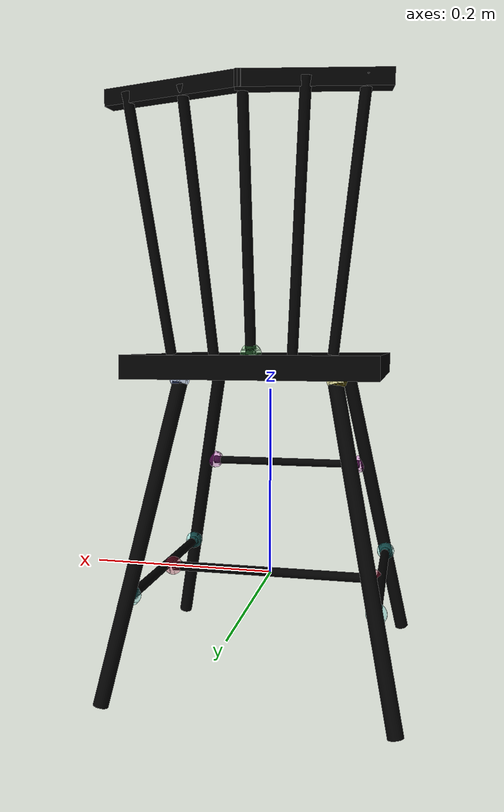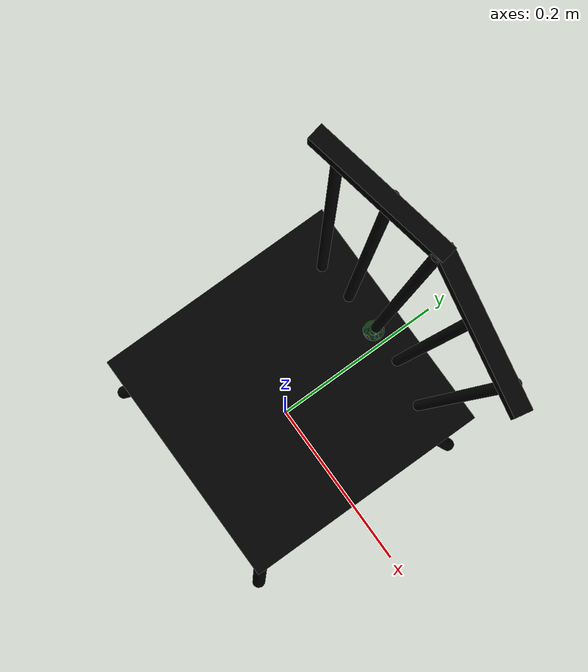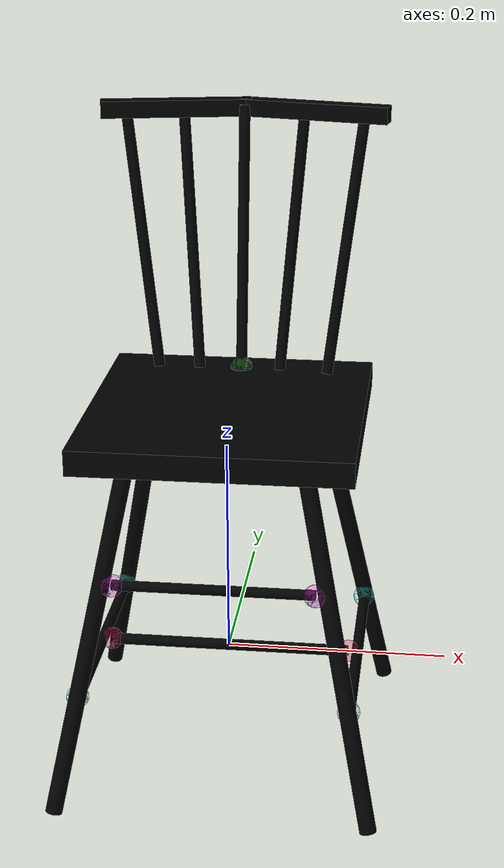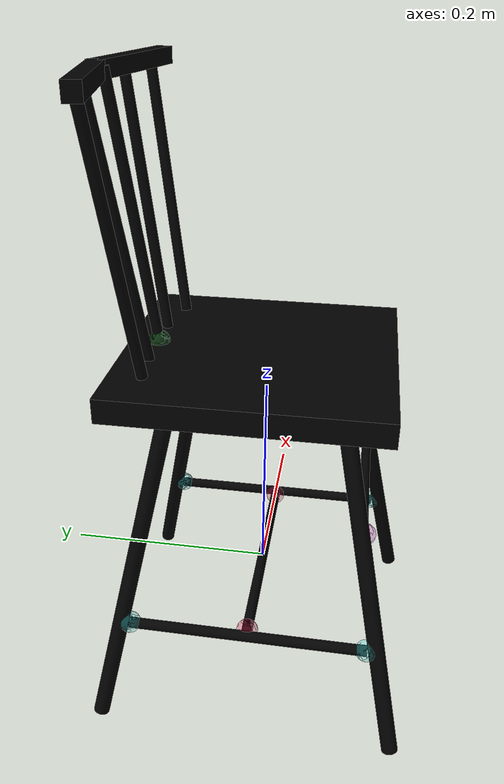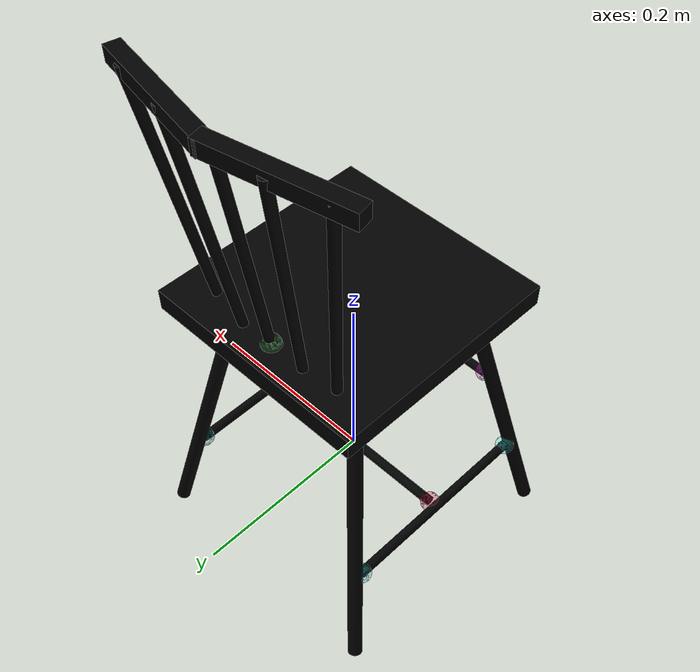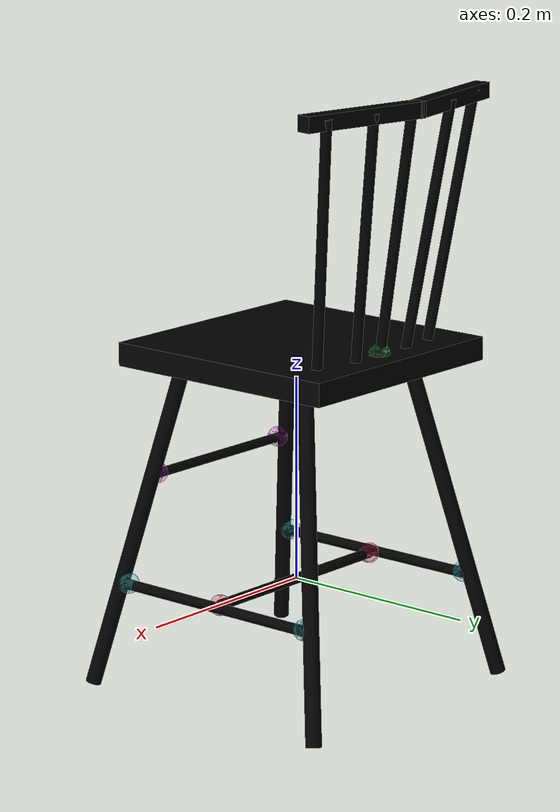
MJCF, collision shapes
<mujoco model="chair_agam_0005">
    <asset>
        <mesh file="chair_agam_0005/0.stl" name="part0"
              scale="0.0005039999999999999 0.0005039999999999999 0.0005039999999999999"/>
        <mesh file="chair_agam_0005/9.stl" name="part9"
              scale="0.0005039999999999999 0.0005039999999999999 0.0005039999999999999"/>
        <mesh file="chair_agam_0005/8.stl" name="part8"
              scale="0.0005039999999999999 0.0005039999999999999 0.0005039999999999999"/>
        <mesh file="chair_agam_0005/7.stl" name="part7"
              scale="0.0005039999999999999 0.0005039999999999999 0.0005039999999999999"/>
        <mesh file="chair_agam_0005/6.stl" name="part6"
              scale="0.0005039999999999999 0.0005039999999999999 0.0005039999999999999"/>
        <mesh file="chair_agam_0005/5.stl" name="part5"
              scale="0.0005039999999999999 0.0005039999999999999 0.0005039999999999999"/>
        <mesh file="chair_agam_0005/4.stl" name="part4"
              scale="0.0005039999999999999 0.0005039999999999999 0.0005039999999999999"/>
        <mesh file="chair_agam_0005/3.stl" name="part3"
              scale="0.0005039999999999999 0.0005039999999999999 0.0005039999999999999"/>
        <mesh file="chair_agam_0005/2.stl" name="part2"
              scale="0.0005039999999999999 0.0005039999999999999 0.0005039999999999999"/>
        <mesh file="chair_agam_0005/1.stl" name="part1"
              scale="0.0005039999999999999 0.0005039999999999999 0.0005039999999999999"/>
    </asset>
    <equality>
        <weld active="false" body1="7_part7" body2="3_part3" solimp="1 1 0.5" solref="0.01 0.3"/>
        <weld active="false" body1="4_part4" body2="3_part3" solimp="1 1 0.5" solref="0.01 0.3"/>
        <weld active="false" body1="6_part6" body2="3_part3" solimp="1 1 0.5" solref="0.01 0.3"/>
        <weld active="false" body1="5_part5" body2="3_part3" solimp="1 1 0.5" solref="0.01 0.3"/>
        <weld active="false" body1="8_part8" body2="7_part7" solimp="1 1 0.5" solref="0.01 0.3"/>
        <weld active="false" body1="8_part8" body2="5_part5" solimp="1 1 0.5" solref="0.01 0.3"/>
        <weld active="false" body1="9_part9" body2="8_part8" solimp="1 1 0.5" solref="0.01 0.3"/>
        <weld active="false" body1="0_part0" body2="1_part1" solimp="1 1 0.5" solref="0.01 0.3"/>
        <weld active="false" body1="0_part0" body2="2_part2" solimp="1 1 0.5" solref="0.01 0.3"/>
        <weld active="false" body1="8_part8" body2="6_part6" solimp="1 1 0.5" solref="0.01 0.3"/>
        <weld active="false" body1="7_part7" body2="1_part1" solimp="1 1 0.5" solref="0.01 0.3"/>
        <weld active="false" body1="7_part7" body2="2_part2" solimp="1 1 0.5" solref="0.01 0.3"/>
        <weld active="false" body1="4_part4" body2="1_part1" solimp="1 1 0.5" solref="0.01 0.3"/>
        <weld active="false" body1="4_part4" body2="2_part2" solimp="1 1 0.5" solref="0.01 0.3"/>
        <weld active="false" body1="6_part6" body2="1_part1" solimp="1 1 0.5" solref="0.01 0.3"/>
        <weld active="false" body1="6_part6" body2="2_part2" solimp="1 1 0.5" solref="0.01 0.3"/>
        <weld active="false" body1="5_part5" body2="1_part1" solimp="1 1 0.5" solref="0.01 0.3"/>
        <weld active="false" body1="5_part5" body2="2_part2" solimp="1 1 0.5" solref="0.01 0.3"/>
        <weld active="false" body1="8_part8" body2="4_part4" solimp="1 1 0.5" solref="0.01 0.3"/>
    </equality>
    <worldbody>
        <body name="0_part0" pos="-1.0079999999999999e-10 5.0399999999999995e-11 0.0" quat="1 0 0 0">
            <geom conaffinity="0" contype="0" density="0" mesh="part0" name="0_part0_mesh" pos="0.0 0.0 0.0"
                  rgba="0.82 0.71 0.55 1" type="mesh"/>
            <site name="0_part0_horizontal_radius_site" pos="-1.0079999999999999e-10 5.0399999999999995e-11 0.0"
                  quat="1 0 0 0" rgba="0 0 0 0" size="0.0005039999999999999"/>
            <site name="0_part0_top_site" pos="-1.0079999999999999e-10 5.0399999999999995e-11 0.0071855760312"
                  quat="1 0 0 0" rgba="0 0 0 0" size="0.0005039999999999999"/>
            <site name="0_part0_bottom_site" pos="-1.0079999999999999e-10 5.0399999999999995e-11 -0.0071855760312"
                  quat="1 0 0 0" rgba="0 0 0 0" size="0.0005039999999999999"/>
            <site name="0_part0_corner_site8" pos="-0.11948160737519999 0.0071855713439999995 0.0071855760312"
                  quat="1 0 0 0" rgba="0 0 0 0" size="0.01008"/>
            <site name="0_part0_corner_site7" pos="0.11948160717359999 0.0071855713439999995 0.0071855760312"
                  quat="1 0 0 0" rgba="0 0 0 0" size="0.01008"/>
            <site name="0_part0_corner_site6" pos="0.11948160717359999 -0.0071855712432 0.0071855760312" quat="1 0 0 0"
                  rgba="0 0 0 0" size="0.01008"/>
            <site name="0_part0_corner_site5" pos="-0.11948160737519999 -0.0071855712432 0.0071855760312" quat="1 0 0 0"
                  rgba="0 0 0 0" size="0.01008"/>
            <site name="0_part0_corner_site4" pos="-0.11948160737519999 0.0071855713439999995 -0.0071855760312"
                  quat="1 0 0 0" rgba="0 0 0 0" size="0.01008"/>
            <site name="0_part0_corner_site3" pos="0.11948160717359999 0.0071855713439999995 -0.0071855760312"
                  quat="1 0 0 0" rgba="0 0 0 0" size="0.01008"/>
            <site name="0_part0_corner_site2" pos="0.11948160717359999 -0.0071855712432 -0.0071855760312" quat="1 0 0 0"
                  rgba="0 0 0 0" size="0.01008"/>
            <site name="0_part0_corner_site1" pos="-0.11948160737519999 -0.0071855712432 -0.0071855760312"
                  quat="1 0 0 0" rgba="0 0 0 0" size="0.01008"/>
            <site name="centerpole-sidepole,conn_site2" pos="-0.11088 0.0 0.0" quat="0.7071067 0 0.7071068 0"
                  rgba="0.9019 0.0980 0.2941 0.3" size="0.01008"/>
            <site name="centerpole-sidepole,conn_site1" pos="0.11088 0.0 0.0" quat="0.7071067 0 -0.7071068 0"
                  rgba="0.9019 0.0980 0.2941 0.3" size="0.01008"/>
            <site name="centerpole-sidepole,conn_site0" pos="-0.11088 0.0 0.0" quat="0.7071067 0 0.7071068 0"
                  rgba="0.9019 0.0980 0.2941 0.3" size="0.01008"/>
            <site name="centerpole-sidepole,conn_site-1" pos="0.11088 0.0 0.0" quat="0.7071067 0 -0.7071068 0"
                  rgba="0.9019 0.0980 0.2941 0.3" size="0.01008"/>
            <geom density="50" name="noviz_collision_0_part0_0"
                  pos="9.6264e-07 1.5120000000000002e-08 -5.543999999999999e-08" quat="0.7071067 0 0.7071068 0"
                  rgba="0 0 0 0" size="0.00504 0.11088" solref="0.001 1" type="cylinder"/>
        </body>
        <body name="9_part9" pos="-8.9208e-09 0.1202628134232 0.35704090280879996" quat="1 0 0 0">
            <geom conaffinity="0" contype="0" density="0" mesh="part9" name="9_part9_mesh" pos="0.0 0.0 0.0"
                  rgba="0.82 0.71 0.55 1" type="mesh"/>
            <site name="9_part9_horizontal_radius_site" pos="0.0 0.0 0.0" quat="1 0 0 0" rgba="0 0 0 0"
                  size="0.0005039999999999999"/>
            <site name="9_part9_top_site" pos="0.0 0.0 0.1251526684464" quat="1 0 0 0" rgba="0 0 0 0"
                  size="0.0005039999999999999"/>
            <site name="9_part9_bottom_site" pos="0.0 0.0 -0.1251526684464" quat="1 0 0 0" rgba="0 0 0 0"
                  size="0.0005039999999999999"/>
            <site name="9_part9_corner_site8" pos="-0.13371235652879998 0.029543431629599996 0.1251526684464"
                  quat="1 0 0 0" rgba="0 0 0 0" size="0.01008"/>
            <site name="9_part9_corner_site7" pos="0.13371235652879998 0.029543431629599996 0.1251526684464"
                  quat="1 0 0 0" rgba="0 0 0 0" size="0.01008"/>
            <site name="9_part9_corner_site6" pos="0.13371235652879998 -0.029543431629599996 0.1251526684464"
                  quat="1 0 0 0" rgba="0 0 0 0" size="0.01008"/>
            <site name="9_part9_corner_site5" pos="-0.13371235652879998 -0.029543431629599996 0.1251526684464"
                  quat="1 0 0 0" rgba="0 0 0 0" size="0.01008"/>
            <site name="9_part9_corner_site4" pos="-0.13371235652879998 0.029543431629599996 -0.1251526684464"
                  quat="1 0 0 0" rgba="0 0 0 0" size="0.01008"/>
            <site name="9_part9_corner_site3" pos="0.13371235652879998 0.029543431629599996 -0.1251526684464"
                  quat="1 0 0 0" rgba="0 0 0 0" size="0.01008"/>
            <site name="9_part9_corner_site2" pos="0.13371235652879998 -0.029543431629599996 -0.1251526684464"
                  quat="1 0 0 0" rgba="0 0 0 0" size="0.01008"/>
            <site name="9_part9_corner_site1" pos="-0.13371235652879998 -0.029543431629599996 -0.1251526684464"
                  quat="1 0 0 0" rgba="0 0 0 0" size="0.01008"/>
            <site name="back-seat,0,conn_site1" pos="0.0 -0.0189588168 -0.11814490799999998" quat="1 0 0 0"
                  rgba="0.2352 0.7058 0.2941 0.3" size="0.01008"/>
            <geom density="50" name="noviz_collision_9_part9_0"
                  pos="3.7648800000000005e-06 -0.00034330967999999997 -0.0007129029599999999"
                  quat="0.9971262 -0.07575821 0 0" rgba="0 0 0 0" size="0.00504 0.12095999999999998" solref="0.001 1"
                  type="cylinder"/>
            <geom density="50" name="noviz_collision_9_part9_1"
                  pos="-0.04737598992 -0.0003108168 -0.0012169029599999998"
                  quat="0.9963928 -0.07759933 -0.03434765 0.000284971" rgba="0 0 0 0" size="0.00504 0.12095999999999998"
                  solref="0.001 1" type="cylinder"/>
            <geom density="50" name="noviz_collision_9_part9_2" pos="-0.09172799999999999 -0.0083748168 0.00079909704"
                  quat="0.9963063 -0.05911345 -0.0622605 0.001762478" rgba="0 0 0 0" size="0.00504 0.12095999999999998"
                  solref="0.001 1" type="cylinder"/>
            <geom density="50" name="noviz_collision_9_part9_3"
                  pos="0.045360010080000006 -0.00034330967999999997 -0.0007129029599999999"
                  quat="0.9965149 -0.07353739 0.03937308 -0.0003266643" rgba="0 0 0 0"
                  size="0.00504 0.12095999999999998" solref="0.001 1" type="cylinder"/>
            <geom density="50" name="noviz_collision_9_part9_4" pos="0.095256 -0.0093828168 0.00029509704"
                  quat="0.9955656 -0.07231736 0.060159 -0.0004991174" rgba="0 0 0 0" size="0.00504 0.12095999999999998"
                  solref="0.001 1" type="cylinder"/>
            <geom density="50" name="noviz_collision_9_part9_5" pos="-0.061488 0.011785183199999999 0.11621509199999998"
                  quat="0.9954613 0 0 0.095167" rgba="0 0 0 0" size="0.06804 0.007559999999999999 0.007559999999999999"
                  solref="0.001 1" type="box"/>
            <geom density="50" name="noviz_collision_9_part9_6" pos="0.064008 0.011785183199999999 0.11621509199999998"
                  quat="0.9954612 0 0 -0.09516817" rgba="0 0 0 0"
                  size="0.06804 0.007559999999999999 0.007559999999999999" solref="0.001 1" type="box"/>
        </body>
        <body name="8_part8" pos="-7.3584e-09 0.0074996166672 0.22616160204959995" quat="1 0 0 0">
            <geom conaffinity="0" contype="0" density="0" mesh="part8" name="8_part8_mesh" pos="0.0 0.0 0.0"
                  rgba="0.82 0.71 0.55 1" type="mesh"/>
            <site name="8_part8_horizontal_radius_site" pos="-0.0 -9.071999999999999e-10 0.0" quat="1 0 0 0"
                  rgba="0 0 0 0" size="0.0005039999999999999"/>
            <site name="8_part8_top_site" pos="0.0 -9.071999999999999e-10 0.012801612297599999" quat="1 0 0 0"
                  rgba="0 0 0 0" size="0.0005039999999999999"/>
            <site name="8_part8_bottom_site" pos="0.0 -9.071999999999999e-10 -0.012801612297599999" quat="1 0 0 0"
                  rgba="0 0 0 0" size="0.0005039999999999999"/>
            <site name="8_part8_corner_site8" pos="-0.1255258149768 0.1280160365904 0.012801612297599999" quat="1 0 0 0"
                  rgba="0 0 0 0" size="0.01008"/>
            <site name="8_part8_corner_site7" pos="0.1255258149768 0.1280160365904 0.012801612297599999" quat="1 0 0 0"
                  rgba="0 0 0 0" size="0.01008"/>
            <site name="8_part8_corner_site6" pos="0.1255258149768 -0.1280160384552 0.012801612297599999" quat="1 0 0 0"
                  rgba="0 0 0 0" size="0.01008"/>
            <site name="8_part8_corner_site5" pos="-0.1255258149768 -0.1280160384552 0.012801612297599999"
                  quat="1 0 0 0" rgba="0 0 0 0" size="0.01008"/>
            <site name="8_part8_corner_site4" pos="-0.1255258149768 0.1280160365904 -0.012801612297599999"
                  quat="1 0 0 0" rgba="0 0 0 0" size="0.01008"/>
            <site name="8_part8_corner_site3" pos="0.1255258149768 0.1280160365904 -0.012801612297599999" quat="1 0 0 0"
                  rgba="0 0 0 0" size="0.01008"/>
            <site name="8_part8_corner_site2" pos="0.1255258149768 -0.1280160384552 -0.012801612297599999"
                  quat="1 0 0 0" rgba="0 0 0 0" size="0.01008"/>
            <site name="8_part8_corner_site1" pos="-0.1255258149768 -0.1280160384552 -0.012801612297599999"
                  quat="1 0 0 0" rgba="0 0 0 0" size="0.01008"/>
            <site name="seat-back,0,conn_site1" pos="0.0 0.0938043792 0.012734396640000001" quat="1 0 0 0"
                  rgba="0.2352 0.7058 0.2941 0.3" size="0.01008"/>
            <site name="seat-leg4,0,conn_site1" pos="-0.07812 0.06810037919999999 -0.011961603359999998"
                  quat="-0.08682414 0.9924039 0.00759613 -0.08682414" rgba="1.0 0.8823 0.0980 0.3" size="0.01008"/>
            <site name="seat-leg5,0,conn_site1" pos="0.07812 0.06810037919999999 -0.011961603359999998"
                  quat="-0.08682414 0.9924039 -0.00759613 0.08682414" rgba="0.2627 0.3882 0.8470 0.3" size="0.01008"/>
            <site name="seat-leg6,0,conn_site1" pos="0.07812 -0.08561962079999999 -0.011961603359999998"
                  quat="0.08682423 0.9924039 0.007596138 0.08682413" rgba="0.9607 0.5098 0.1921 0.3" size="0.01008"/>
            <site name="seat-leg7,0,conn_site1" pos="-0.07812 -0.08561962079999999 -0.011961603359999998"
                  quat="0.08682423 0.9924039 -0.007596138 -0.08682413" rgba="0.5686 0.1176 0.7058 0.3" size="0.01008"/>
            <geom density="50" name="noviz_collision_8_part8_0" pos="-3.119256e-05 -0.00158345208 0.00062040384"
                  quat="1 0 0 0" rgba="0 0 0 0" size="0.12095999999999998 0.12347999999999999 0.01134" solref="0.001 1"
                  type="box"/>
        </body>
        <body name="7_part7" pos="-0.10801543435199998 -0.10800391376879999 0.0567182570976" quat="1 0 0 0">
            <geom conaffinity="0" contype="0" density="0" mesh="part7" name="7_part7_mesh" pos="0.0 0.0 0.0"
                  rgba="0.82 0.71 0.55 1" type="mesh"/>
            <site name="7_part7_horizontal_radius_site" pos="0.0 -0.0 -0.0" quat="1 0 0 0" rgba="0 0 0 0"
                  size="0.0005039999999999999"/>
            <site name="7_part7_top_site" pos="0.0 0.0 0.1645430031504" quat="1 0 0 0" rgba="0 0 0 0"
                  size="0.0005039999999999999"/>
            <site name="7_part7_bottom_site" pos="0.0 0.0 -0.1645430031504" quat="1 0 0 0" rgba="0 0 0 0"
                  size="0.0005039999999999999"/>
            <site name="7_part7_corner_site8" pos="-0.0387188098416 0.0387187980984 0.1645430031504" quat="1 0 0 0"
                  rgba="0 0 0 0" size="0.01008"/>
            <site name="7_part7_corner_site7" pos="0.0387188098416 0.0387187980984 0.1645430031504" quat="1 0 0 0"
                  rgba="0 0 0 0" size="0.01008"/>
            <site name="7_part7_corner_site6" pos="0.0387188098416 -0.0387187980984 0.1645430031504" quat="1 0 0 0"
                  rgba="0 0 0 0" size="0.01008"/>
            <site name="7_part7_corner_site5" pos="-0.0387188098416 -0.0387187980984 0.1645430031504" quat="1 0 0 0"
                  rgba="0 0 0 0" size="0.01008"/>
            <site name="7_part7_corner_site4" pos="-0.0387188098416 0.0387187980984 -0.1645430031504" quat="1 0 0 0"
                  rgba="0 0 0 0" size="0.01008"/>
            <site name="7_part7_corner_site3" pos="0.0387188098416 0.0387187980984 -0.1645430031504" quat="1 0 0 0"
                  rgba="0 0 0 0" size="0.01008"/>
            <site name="7_part7_corner_site2" pos="0.0387188098416 -0.0387187980984 -0.1645430031504" quat="1 0 0 0"
                  rgba="0 0 0 0" size="0.01008"/>
            <site name="7_part7_corner_site1" pos="-0.0387188098416 -0.0387187980984 -0.1645430031504" quat="1 0 0 0"
                  rgba="0 0 0 0" size="0.01008"/>
            <site name="leg-sidepole,0,180,conn_site4"
                  pos="-0.011936559599999999 -0.0023720911199999993 -0.055710244799999996"
                  quat="0.7071067 -0.7071068 0 0" rgba="0.2745 0.9411 0.9411 0.3" size="0.01008"/>
            <site name="leg-frontpole,conn_site1" pos="0.0198154404 0.00821190888 0.05012974512"
                  quat="0.7071067 0 0.7071068 0" rgba="0.9411 0.1960 0.9019 0.3" size="0.01008"/>
            <site name="leg7-seat,0,conn_site1" pos="0.029895440399999997 0.02988390888 0.1574817552"
                  quat="0.08682423 0.9924039 -0.007596138 -0.08682413" rgba="0.5686 0.1176 0.7058 0.3" size="0.01008"/>
            <geom density="50" name="noviz_collision_7_part7_0"
                  pos="-0.0004376836799999999 -0.00041027112 -0.00208852056"
                  quat="0.9902333 -0.09781314 0.09886993 0.009766161" rgba="0 0 0 0" size="0.007559999999999999 0.16128"
                  solref="0.001 1" type="cylinder"/>
        </body>
        <body name="6_part6" pos="0.10801541963519998 -0.10800391376879999 0.0567182570976" quat="1 0 0 0">
            <geom conaffinity="0" contype="0" density="0" mesh="part6" name="6_part6_mesh" pos="0.0 0.0 0.0"
                  rgba="0.82 0.71 0.55 1" type="mesh"/>
            <site name="6_part6_horizontal_radius_site" pos="-0.0 -0.0 -0.0" quat="1 0 0 0" rgba="0 0 0 0"
                  size="0.0005039999999999999"/>
            <site name="6_part6_top_site" pos="0.0 0.0 0.1645430031504" quat="1 0 0 0" rgba="0 0 0 0"
                  size="0.0005039999999999999"/>
            <site name="6_part6_bottom_site" pos="0.0 0.0 -0.1645430031504" quat="1 0 0 0" rgba="0 0 0 0"
                  size="0.0005039999999999999"/>
            <site name="6_part6_corner_site8" pos="-0.0387188098416 0.0387187980984 0.1645430031504" quat="1 0 0 0"
                  rgba="0 0 0 0" size="0.01008"/>
            <site name="6_part6_corner_site7" pos="0.0387188098416 0.0387187980984 0.1645430031504" quat="1 0 0 0"
                  rgba="0 0 0 0" size="0.01008"/>
            <site name="6_part6_corner_site6" pos="0.0387188098416 -0.0387187980984 0.1645430031504" quat="1 0 0 0"
                  rgba="0 0 0 0" size="0.01008"/>
            <site name="6_part6_corner_site5" pos="-0.0387188098416 -0.0387187980984 0.1645430031504" quat="1 0 0 0"
                  rgba="0 0 0 0" size="0.01008"/>
            <site name="6_part6_corner_site4" pos="-0.0387188098416 0.0387187980984 -0.1645430031504" quat="1 0 0 0"
                  rgba="0 0 0 0" size="0.01008"/>
            <site name="6_part6_corner_site3" pos="0.0387188098416 0.0387187980984 -0.1645430031504" quat="1 0 0 0"
                  rgba="0 0 0 0" size="0.01008"/>
            <site name="6_part6_corner_site2" pos="0.0387188098416 -0.0387187980984 -0.1645430031504" quat="1 0 0 0"
                  rgba="0 0 0 0" size="0.01008"/>
            <site name="6_part6_corner_site1" pos="-0.0387188098416 -0.0387187980984 -0.1645430031504" quat="1 0 0 0"
                  rgba="0 0 0 0" size="0.01008"/>
            <site name="leg-sidepole,0,180,conn_site2" pos="0.01092857976 -0.0023720911199999993 -0.055710244799999996"
                  quat="0.7071067 -0.7071068 0 0" rgba="0.2745 0.9411 0.9411 0.3" size="0.01008"/>
            <site name="leg-frontpole,conn_site2" pos="-0.01981542024 0.00821190888 0.05012974512"
                  quat="0.7071067 0 -0.7071068 0" rgba="0.9411 0.1960 0.9019 0.3" size="0.01008"/>
            <site name="leg6-seat,0,conn_site1" pos="-0.029895420239999998 0.02988390888 0.1574817552"
                  quat="0.08682423 0.9924039 0.007596138 0.08682413" rgba="0.9607 0.5098 0.1921 0.3" size="0.01008"/>
            <geom density="50" name="noviz_collision_6_part6_0"
                  pos="0.00043771391999999996 -0.00041027112 -0.00208852056"
                  quat="0.9902335 -0.09781381 -0.09886734 -0.009767335" rgba="0 0 0 0"
                  size="0.007559999999999999 0.16128" solref="0.001 1" type="cylinder"/>
        </body>
        <body name="5_part5" pos="0.10801541963519998 0.10800392112719999 0.0567182570976" quat="1 0 0 0">
            <geom conaffinity="0" contype="0" density="0" mesh="part5" name="5_part5_mesh" pos="0.0 0.0 0.0"
                  rgba="0.82 0.71 0.55 1" type="mesh"/>
            <site name="5_part5_horizontal_radius_site" pos="-0.0 -0.0 -0.0" quat="1 0 0 0" rgba="0 0 0 0"
                  size="0.0005039999999999999"/>
            <site name="5_part5_top_site" pos="0.0 0.0 0.1645430031504" quat="1 0 0 0" rgba="0 0 0 0"
                  size="0.0005039999999999999"/>
            <site name="5_part5_bottom_site" pos="0.0 0.0 -0.1645430031504" quat="1 0 0 0" rgba="0 0 0 0"
                  size="0.0005039999999999999"/>
            <site name="5_part5_corner_site8" pos="-0.0387188098416 0.0387187980984 0.1645430031504" quat="1 0 0 0"
                  rgba="0 0 0 0" size="0.01008"/>
            <site name="5_part5_corner_site7" pos="0.0387188098416 0.0387187980984 0.1645430031504" quat="1 0 0 0"
                  rgba="0 0 0 0" size="0.01008"/>
            <site name="5_part5_corner_site6" pos="0.0387188098416 -0.0387187980984 0.1645430031504" quat="1 0 0 0"
                  rgba="0 0 0 0" size="0.01008"/>
            <site name="5_part5_corner_site5" pos="-0.0387188098416 -0.0387187980984 0.1645430031504" quat="1 0 0 0"
                  rgba="0 0 0 0" size="0.01008"/>
            <site name="5_part5_corner_site4" pos="-0.0387188098416 0.0387187980984 -0.1645430031504" quat="1 0 0 0"
                  rgba="0 0 0 0" size="0.01008"/>
            <site name="5_part5_corner_site3" pos="0.0387188098416 0.0387187980984 -0.1645430031504" quat="1 0 0 0"
                  rgba="0 0 0 0" size="0.01008"/>
            <site name="5_part5_corner_site2" pos="0.0387188098416 -0.0387187980984 -0.1645430031504" quat="1 0 0 0"
                  rgba="0 0 0 0" size="0.01008"/>
            <site name="5_part5_corner_site1" pos="-0.0387188098416 -0.0387187980984 -0.1645430031504" quat="1 0 0 0"
                  rgba="0 0 0 0" size="0.01008"/>
            <site name="leg-sidepole,0,180,conn_site1" pos="0.01092857976 0.0023720810399999997 -0.055710244799999996"
                  quat="0.7071067 0.7071068 0 0" rgba="0.2745 0.9411 0.9411 0.3" size="0.01008"/>
            <site name="leg5-seat,0,conn_site1" pos="-0.029895420239999998 -0.03240391896 0.1574817552"
                  quat="-0.08682414 0.9924039 -0.00759613 0.08682414" rgba="0.2627 0.3882 0.8470 0.3" size="0.01008"/>
            <geom density="50" name="noviz_collision_5_part5_0"
                  pos="0.0007954077599999998 0.00035608103999999996 -0.00208852056"
                  quat="0.9902335 0.09781371 -0.09886734 0.009767343" rgba="0 0 0 0" size="0.007559999999999999 0.16128"
                  solref="0.001 1" type="cylinder"/>
        </body>
        <body name="4_part4" pos="-0.10801543435199998 0.10800392112719999 0.0567182570976" quat="1 0 0 0">
            <geom conaffinity="0" contype="0" density="0" mesh="part4" name="4_part4_mesh" pos="0.0 0.0 0.0"
                  rgba="0.82 0.71 0.55 1" type="mesh"/>
            <site name="4_part4_horizontal_radius_site" pos="-0.0 0.0 -0.0" quat="1 0 0 0" rgba="0 0 0 0"
                  size="0.0005039999999999999"/>
            <site name="4_part4_top_site" pos="0.0 0.0 0.1645430031504" quat="1 0 0 0" rgba="0 0 0 0"
                  size="0.0005039999999999999"/>
            <site name="4_part4_bottom_site" pos="0.0 0.0 -0.1645430031504" quat="1 0 0 0" rgba="0 0 0 0"
                  size="0.0005039999999999999"/>
            <site name="4_part4_corner_site8" pos="-0.0387188098416 0.0387187980984 0.1645430031504" quat="1 0 0 0"
                  rgba="0 0 0 0" size="0.01008"/>
            <site name="4_part4_corner_site7" pos="0.0387188098416 0.0387187980984 0.1645430031504" quat="1 0 0 0"
                  rgba="0 0 0 0" size="0.01008"/>
            <site name="4_part4_corner_site6" pos="0.0387188098416 -0.0387187980984 0.1645430031504" quat="1 0 0 0"
                  rgba="0 0 0 0" size="0.01008"/>
            <site name="4_part4_corner_site5" pos="-0.0387188098416 -0.0387187980984 0.1645430031504" quat="1 0 0 0"
                  rgba="0 0 0 0" size="0.01008"/>
            <site name="4_part4_corner_site4" pos="-0.0387188098416 0.0387187980984 -0.1645430031504" quat="1 0 0 0"
                  rgba="0 0 0 0" size="0.01008"/>
            <site name="4_part4_corner_site3" pos="0.0387188098416 0.0387187980984 -0.1645430031504" quat="1 0 0 0"
                  rgba="0 0 0 0" size="0.01008"/>
            <site name="4_part4_corner_site2" pos="0.0387188098416 -0.0387187980984 -0.1645430031504" quat="1 0 0 0"
                  rgba="0 0 0 0" size="0.01008"/>
            <site name="4_part4_corner_site1" pos="-0.0387188098416 -0.0387187980984 -0.1645430031504" quat="1 0 0 0"
                  rgba="0 0 0 0" size="0.01008"/>
            <site name="leg-sidepole,0,180,conn_site3"
                  pos="-0.011936559599999999 0.0023720810399999997 -0.055710244799999996" quat="0.7071067 0.7071068 0 0"
                  rgba="0.2745 0.9411 0.9411 0.3" size="0.01008"/>
            <site name="leg4-seat,0,conn_site1" pos="0.029895440399999997 -0.03240391896 0.1574817552"
                  quat="-0.08682414 0.9924039 0.00759613 -0.08682414" rgba="1.0 0.8823 0.0980 0.3" size="0.01008"/>
            <geom density="50" name="noviz_collision_4_part4_0"
                  pos="-0.0004376988 0.00035608103999999996 -0.0020885356799999998"
                  quat="0.9902335 0.09781372 0.09886743 -0.009767338" rgba="0 0 0 0" size="0.007559999999999999 0.16128"
                  solref="0.001 1" type="cylinder"/>
        </body>
        <body name="3_part3" pos="-3.9312e-09 -0.09813413090879998 0.1066800061152" quat="1 0 0 0">
            <geom conaffinity="0" contype="0" density="0" mesh="part3" name="3_part3_mesh" pos="0.0 0.0 0.0"
                  rgba="0.82 0.71 0.55 1" type="mesh"/>
            <site name="3_part3_horizontal_radius_site" pos="-1.3607999999999999e-09 0.0 5.0399999999999995e-11"
                  quat="1 0 0 0" rgba="0 0 0 0" size="0.0005039999999999999"/>
            <site name="3_part3_top_site" pos="-1.3607999999999999e-09 0.0 0.0059024398608" quat="1 0 0 0"
                  rgba="0 0 0 0" size="0.0005039999999999999"/>
            <site name="3_part3_bottom_site" pos="-1.3607999999999999e-09 0.0 -0.005902439759999999" quat="1 0 0 0"
                  rgba="0 0 0 0" size="0.0005039999999999999"/>
            <site name="3_part3_corner_site8" pos="-0.09814560482159998 0.005902497064799999 0.0059024398608"
                  quat="1 0 0 0" rgba="0 0 0 0" size="0.01008"/>
            <site name="3_part3_corner_site7" pos="0.0981456020496 0.005902497064799999 0.0059024398608" quat="1 0 0 0"
                  rgba="0 0 0 0" size="0.01008"/>
            <site name="3_part3_corner_site6" pos="0.0981456020496 -0.005902497064799999 0.0059024398608" quat="1 0 0 0"
                  rgba="0 0 0 0" size="0.01008"/>
            <site name="3_part3_corner_site5" pos="-0.09814560482159998 -0.005902497064799999 0.0059024398608"
                  quat="1 0 0 0" rgba="0 0 0 0" size="0.01008"/>
            <site name="3_part3_corner_site4" pos="-0.09814560482159998 0.005902497064799999 -0.005902439759999999"
                  quat="1 0 0 0" rgba="0 0 0 0" size="0.01008"/>
            <site name="3_part3_corner_site3" pos="0.0981456020496 0.005902497064799999 -0.005902439759999999"
                  quat="1 0 0 0" rgba="0 0 0 0" size="0.01008"/>
            <site name="3_part3_corner_site2" pos="0.0981456020496 -0.005902497064799999 -0.005902439759999999"
                  quat="1 0 0 0" rgba="0 0 0 0" size="0.01008"/>
            <site name="3_part3_corner_site1" pos="-0.09814560482159998 -0.005902497064799999 -0.005902439759999999"
                  quat="1 0 0 0" rgba="0 0 0 0" size="0.01008"/>
            <site name="frontpole-leg,conn_site2" pos="0.0882 -0.0016578727199999996 0.00016799832"
                  quat="0.7071067 0 -0.7071068 0" rgba="0.9411 0.1960 0.9019 0.3" size="0.01008"/>
            <site name="frontpole-leg,conn_site1" pos="-0.0882 -0.0016578727199999996 0.00016799832"
                  quat="0.7071067 0 0.7071068 0" rgba="0.9411 0.1960 0.9019 0.3" size="0.01008"/>
            <geom density="50" name="noviz_collision_3_part3_0"
                  pos="-4.989600000000001e-07 1.5120000000000002e-08 2.5200000000000004e-08"
                  quat="0.7071067 0 0.7071068 0" rgba="0 0 0 0" size="0.004536 0.0882" solref="0.001 1"
                  type="cylinder"/>
        </body>
        <body name="2_part2" pos="0.11948376091679999 -2.1117600000000002e-08 -1.5624e-09" quat="1 0 0 0">
            <geom conaffinity="0" contype="0" density="0" mesh="part2" name="2_part2_mesh" pos="0.0 0.0 0.0"
                  rgba="0.82 0.71 0.55 1" type="mesh"/>
            <site name="2_part2_horizontal_radius_site" pos="-1.0079999999999999e-10 1.6632e-09 -5.0399999999999995e-11"
                  quat="1 0 0 0" rgba="0 0 0 0" size="0.0005039999999999999"/>
            <site name="2_part2_top_site" pos="-1.0079999999999999e-10 1.6632e-09 0.007184877638399999" quat="1 0 0 0"
                  rgba="0 0 0 0" size="0.0005039999999999999"/>
            <site name="2_part2_bottom_site" pos="-1.0079999999999999e-10 1.6632e-09 -0.0071848777392" quat="1 0 0 0"
                  rgba="0 0 0 0" size="0.0005039999999999999"/>
            <site name="2_part2_corner_site8" pos="-0.0071827080191999996 0.11947012867439998 0.007184877638399999"
                  quat="1 0 0 0" rgba="0 0 0 0" size="0.01008"/>
            <site name="2_part2_corner_site7" pos="0.0071827078176 0.11947012867439998 0.007184877638399999"
                  quat="1 0 0 0" rgba="0 0 0 0" size="0.01008"/>
            <site name="2_part2_corner_site6" pos="0.0071827078176 -0.119470125348 0.007184877638399999" quat="1 0 0 0"
                  rgba="0 0 0 0" size="0.01008"/>
            <site name="2_part2_corner_site5" pos="-0.0071827080191999996 -0.119470125348 0.007184877638399999"
                  quat="1 0 0 0" rgba="0 0 0 0" size="0.01008"/>
            <site name="2_part2_corner_site4" pos="-0.0071827080191999996 0.11947012867439998 -0.0071848777392"
                  quat="1 0 0 0" rgba="0 0 0 0" size="0.01008"/>
            <site name="2_part2_corner_site3" pos="0.0071827078176 0.11947012867439998 -0.0071848777392" quat="1 0 0 0"
                  rgba="0 0 0 0" size="0.01008"/>
            <site name="2_part2_corner_site2" pos="0.0071827078176 -0.119470125348 -0.0071848777392" quat="1 0 0 0"
                  rgba="0 0 0 0" size="0.01008"/>
            <site name="2_part2_corner_site1" pos="-0.0071827080191999996 -0.119470125348 -0.0071848777392"
                  quat="1 0 0 0" rgba="0 0 0 0" size="0.01008"/>
            <site name="sidepole-centerpole,conn_site1" pos="-0.0086037588 2.016e-08 0.0"
                  quat="0.7071067 0 -0.7071068 0" rgba="0.9019 0.0980 0.2941 0.3" size="0.01008"/>
            <site name="sidepole-centerpole,conn_site-1" pos="-0.0086037588 2.016e-08 0.0"
                  quat="0.7071067 0 -0.7071068 0" rgba="0.9019 0.0980 0.2941 0.3" size="0.01008"/>
            <site name="sidepole-leg,0,180,conn_site2"
                  pos="-0.0005397587999999999 -0.11037599999999999 0.0010079999999999998"
                  quat="0.7071067 -0.7071068 0 0" rgba="0.2745 0.9411 0.9411 0.3" size="0.01008"/>
            <site name="sidepole-leg,0,180,conn_site1"
                  pos="-0.0005397587999999999 0.11037599999999999 0.0010079999999999998" quat="0.7071067 0.7071068 0 0"
                  rgba="0.2745 0.9411 0.9411 0.3" size="0.01008"/>
            <geom density="50" name="noviz_collision_2_part2_0" pos="-1.008e-08 2.3688e-07 -1.1592000000000001e-07"
                  quat="0.7071067 0.7071068 0 0" rgba="0 0 0 0" size="0.00504 0.11088" solref="0.001 1"
                  type="cylinder"/>
        </body>
        <body name="1_part1" pos="-0.11948377976640001 -2.1117600000000002e-08 -1.5624e-09" quat="1 0 0 0">
            <geom conaffinity="0" contype="0" density="0" mesh="part1" name="1_part1_mesh" pos="0.0 0.0 0.0"
                  rgba="0.82 0.71 0.55 1" type="mesh"/>
            <site name="1_part1_horizontal_radius_site" pos="-1.0079999999999999e-10 1.6632e-09 -5.0399999999999995e-11"
                  quat="1 0 0 0" rgba="0 0 0 0" size="0.0005039999999999999"/>
            <site name="1_part1_top_site" pos="-5.0399999999999995e-11 1.6632e-09 0.007184877638399999" quat="1 0 0 0"
                  rgba="0 0 0 0" size="0.0005039999999999999"/>
            <site name="1_part1_bottom_site" pos="-5.0399999999999995e-11 1.6632e-09 -0.0071848777392" quat="1 0 0 0"
                  rgba="0 0 0 0" size="0.0005039999999999999"/>
            <site name="1_part1_corner_site8" pos="-0.007182703836 0.11947012867439998 0.007184877638399999"
                  quat="1 0 0 0" rgba="0 0 0 0" size="0.01008"/>
            <site name="1_part1_corner_site7" pos="0.007182703684799999 0.11947012867439998 0.007184877638399999"
                  quat="1 0 0 0" rgba="0 0 0 0" size="0.01008"/>
            <site name="1_part1_corner_site6" pos="0.007182703684799999 -0.119470125348 0.007184877638399999"
                  quat="1 0 0 0" rgba="0 0 0 0" size="0.01008"/>
            <site name="1_part1_corner_site5" pos="-0.007182703836 -0.119470125348 0.007184877638399999" quat="1 0 0 0"
                  rgba="0 0 0 0" size="0.01008"/>
            <site name="1_part1_corner_site4" pos="-0.007182703836 0.11947012867439998 -0.0071848777392" quat="1 0 0 0"
                  rgba="0 0 0 0" size="0.01008"/>
            <site name="1_part1_corner_site3" pos="0.007182703684799999 0.11947012867439998 -0.0071848777392"
                  quat="1 0 0 0" rgba="0 0 0 0" size="0.01008"/>
            <site name="1_part1_corner_site2" pos="0.007182703684799999 -0.119470125348 -0.0071848777392" quat="1 0 0 0"
                  rgba="0 0 0 0" size="0.01008"/>
            <site name="1_part1_corner_site1" pos="-0.007182703836 -0.119470125348 -0.0071848777392" quat="1 0 0 0"
                  rgba="0 0 0 0" size="0.01008"/>
            <site name="sidepole-centerpole,conn_site2" pos="0.008603784 2.016e-08 0.0" quat="0.7071067 0 0.7071068 0"
                  rgba="0.9019 0.0980 0.2941 0.3" size="0.01008"/>
            <site name="sidepole-centerpole,conn_site0" pos="0.008603784 2.016e-08 0.0" quat="0.7071067 0 0.7071068 0"
                  rgba="0.9019 0.0980 0.2941 0.3" size="0.01008"/>
            <site name="sidepole-leg,0,180,conn_site4" pos="-0.000468216 -0.11037599999999999 0.0010079999999999998"
                  quat="0.7071067 -0.7071068 0 0" rgba="0.2745 0.9411 0.9411 0.3" size="0.01008"/>
            <site name="sidepole-leg,0,180,conn_site3" pos="-0.000468216 0.11037599999999999 0.0010079999999999998"
                  quat="0.7071067 0.7071068 0 0" rgba="0.2745 0.9411 0.9411 0.3" size="0.01008"/>
            <geom density="50" name="noviz_collision_1_part1_0" pos="9.0216e-07 4.4856e-07 -2.2528800000000004e-06"
                  quat="0.7071067 0.7071068 0 0" rgba="0 0 0 0" size="0.00504 0.11088" solref="0.001 1"
                  type="cylinder"/>
        </body>
    </worldbody>
    <actuator/>
    <sensor/>
    <contact/>
    <default/>
</mujoco>
